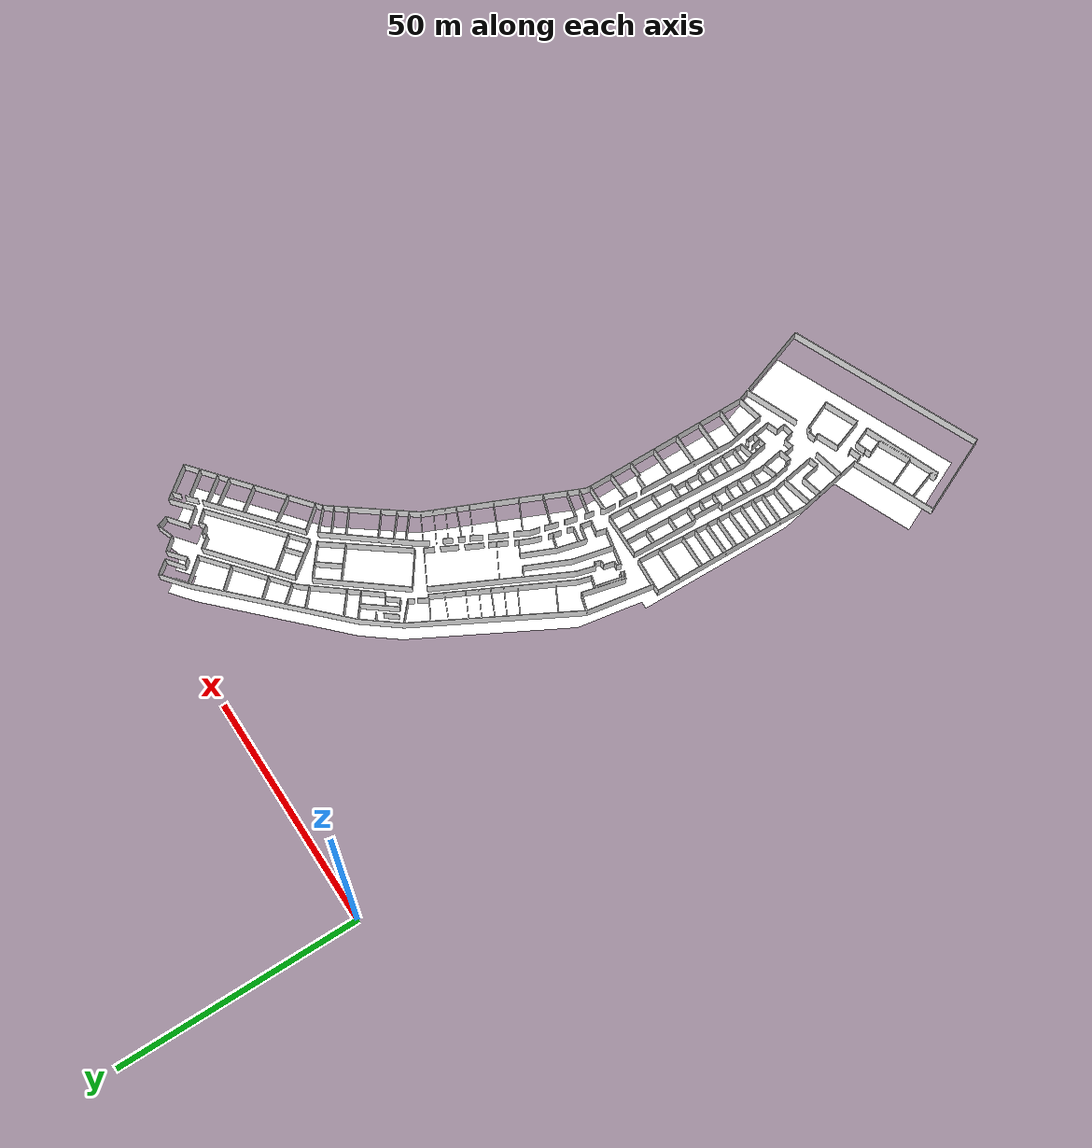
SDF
<sdf version="1.7">
  <world name="sim_world">
    <physics name="10ms" type="ode">
      <max_step_size>0.01</max_step_size>
      <real_time_factor>1.0</real_time_factor>
    </physics>
    <!-- added to fix multiple scan -->
    <plugin filename="libignition-gazebo-sensors-system.so" name="ignition::gazebo::systems::Sensors">
        <render_engine>ogre2</render_engine>
    </plugin>
    <plugin filename="libgz-sim-physics-system.so" name="gz::sim::systems::Physics">
    </plugin>
    <plugin filename="libgz-sim-user-commands-system.so" name="gz::sim::systems::UserCommands">
    </plugin>
    <plugin filename="libgz-sim-scene-broadcaster-system.so" name="gz::sim::systems::SceneBroadcaster">
    </plugin>
    <plugin filename="libdoor.so" name="door">
    </plugin>
    <plugin filename="liblift.so" name="lift">
    </plugin>
    <scene>
      <ambient>1 1 1</ambient>
      <background>0.8 0.8 0.8</background>
      <grid>false</grid>
    </scene>
    <gui fullscreen="0">
      <window>
        <width>1000</width>
        <height>845</height>
        <style material_theme="Light" material_primary="DeepOrange" material_accent="LightBlue" toolbar_color_light="#f3f3f3" toolbar_text_color_light="#111111" toolbar_color_dark="#414141" toolbar_text_color_dark="#f3f3f3" plugin_toolbar_color_light="#bbdefb" plugin_toolbar_text_color_light="#111111" plugin_toolbar_color_dark="#607d8b" plugin_toolbar_text_color_dark="#eeeeee" />
        <menus>
          <drawer default="false">
          </drawer>
        </menus>
      </window>
      <plugin filename="MinimalScene" name="3D View">
        <gz-gui>
          <title>3D View</title>
          <property type="bool" key="showTitleBar">false</property>
          <property type="string" key="state">docked</property>
        </gz-gui>
        <engine>ogre2</engine>
        <scene>scene</scene>
        <ambient_light>0.4 0.4 0.4</ambient_light>
        <background_color>0.8 0.8 0.8</background_color>
        <camera_pose>73.71459581128748 -125.86166280361773 10 0 0.6 1.57</camera_pose>
      </plugin>
      <plugin filename="EntityContextMenuPlugin" name="Entity context menu">
        <gz-gui>
          <property key="state" type="string">floating</property>
          <property key="width" type="double">5</property>
          <property key="height" type="double">5</property>
          <property key="showTitleBar" type="bool">false</property>
        </gz-gui>
      </plugin>
      <plugin filename="GzSceneManager" name="Scene Manager">
        <gz-gui>
          <property key="resizable" type="bool">false</property>
          <property key="width" type="double">5</property>
          <property key="height" type="double">5</property>
          <property key="state" type="string">floating</property>
          <property key="showTitleBar" type="bool">false</property>
        </gz-gui>
      </plugin>
      <plugin filename="InteractiveViewControl" name="Interactive view control">
        <gz-gui>
          <property key="resizable" type="bool">false</property>
          <property key="width" type="double">5</property>
          <property key="height" type="double">5</property>
          <property key="state" type="string">floating</property>
          <property key="showTitleBar" type="bool">false</property>
        </gz-gui>
      </plugin>
      <plugin filename="CameraTracking" name="Camera Tracking">
        <gz-gui>
          <property key="resizable" type="bool">false</property>
          <property key="width" type="double">5</property>
          <property key="height" type="double">5</property>
          <property key="state" type="string">floating</property>
          <property key="showTitleBar" type="bool">false</property>
        </gz-gui>
      </plugin>
      <plugin filename="MarkerManager" name="Marker manager">
        <gz-gui>
          <property key="resizable" type="bool">false</property>
          <property key="width" type="double">5</property>
          <property key="height" type="double">5</property>
          <property key="state" type="string">floating</property>
          <property key="showTitleBar" type="bool">false</property>
        </gz-gui>
      </plugin>
      <plugin filename="SelectEntities" name="Select Entities">
        <gz-gui>
          <property key="resizable" type="bool">false</property>
          <property key="width" type="double">5</property>
          <property key="height" type="double">5</property>
          <property key="state" type="string">floating</property>
          <property key="showTitleBar" type="bool">false</property>
        </gz-gui>
      </plugin>
      <plugin filename="Spawn" name="Spawn Entities">
        <gz-gui>
          <property key="resizable" type="bool">false</property>
          <property key="width" type="double">5</property>
          <property key="height" type="double">5</property>
          <property key="state" type="string">floating</property>
          <property key="showTitleBar" type="bool">false</property>
        </gz-gui>
      </plugin>
      <plugin filename="VisualizationCapabilities" name="Visualization Capabilities">
        <gz-gui>
          <property key="resizable" type="bool">false</property>
          <property key="width" type="double">5</property>
          <property key="height" type="double">5</property>
          <property key="state" type="string">floating</property>
          <property key="showTitleBar" type="bool">false</property>
        </gz-gui>
      </plugin>
      <plugin filename="WorldControl" name="World control">
        <gz-gui>
          <title>World control</title>
          <property type="bool" key="showTitleBar">false</property>
          <property type="bool" key="resizable">false</property>
          <property type="double" key="height">72</property>
          <property type="double" key="z">1</property>
          <property type="string" key="state">floating</property>
          <anchors target="3D View">
            <line own="left" target="left" />
            <line own="bottom" target="bottom" />
          </anchors>
        </gz-gui>
        <play_pause>true</play_pause>
        <step>true</step>
        <start_paused>true</start_paused>
        <use_event>true</use_event>
      </plugin>
      <plugin filename="WorldStats" name="World stats">
        <gz-gui>
          <title>World stats</title>
          <property type="bool" key="showTitleBar">false</property>
          <property type="bool" key="resizable">false</property>
          <property type="double" key="height">110</property>
          <property type="double" key="width">290</property>
          <property type="double" key="z">1</property>
          <property type="string" key="state">floating</property>
          <anchors target="3D View">
            <line own="right" target="right" />
            <line own="bottom" target="bottom" />
          </anchors>
        </gz-gui>
        <sim_time>true</sim_time>
        <real_time>true</real_time>
        <real_time_factor>true</real_time_factor>
        <iterations>true</iterations>
      </plugin>
      <plugin filename="Shapes" name="Shapes">
        <gz-gui>
          <property key="resizable" type="bool">false</property>
          <property key="x" type="double">0</property>
          <property key="y" type="double">0</property>
          <property key="width" type="double">250</property>
          <property key="height" type="double">50</property>
          <property key="state" type="string">floating</property>
          <property key="showTitleBar" type="bool">false</property>
          <property key="cardBackground" type="string">#666666</property>
        </gz-gui>
      </plugin>
      <plugin filename="Lights" name="Lights">
        <gz-gui>
          <property key="resizable" type="bool">false</property>
          <property key="x" type="double">250</property>
          <property key="y" type="double">0</property>
          <property key="width" type="double">150</property>
          <property key="height" type="double">50</property>
          <property key="state" type="string">floating</property>
          <property key="showTitleBar" type="bool">false</property>
          <property key="cardBackground" type="string">#666666</property>
        </gz-gui>
      </plugin>
      <plugin filename="TransformControl" name="Transform control">
        <gz-gui>
          <property key="resizable" type="bool">false</property>
          <property key="x" type="double">0</property>
          <property key="y" type="double">50</property>
          <property key="width" type="double">250</property>
          <property key="height" type="double">50</property>
          <property key="state" type="string">floating</property>
          <property key="showTitleBar" type="bool">false</property>
          <property key="cardBackground" type="string">#777777</property>
        </gz-gui>
      </plugin>
      <plugin filename="Screenshot" name="Screenshot">
        <gz-gui>
          <property key="resizable" type="bool">false</property>
          <property key="x" type="double">250</property>
          <property key="y" type="double">50</property>
          <property key="width" type="double">50</property>
          <property key="height" type="double">50</property>
          <property key="state" type="string">floating</property>
          <property key="showTitleBar" type="bool">false</property>
          <property key="cardBackground" type="string">#777777</property>
        </gz-gui>
      </plugin>
      <plugin filename="CopyPaste" name="CopyPaste">
        <gz-gui>
          <property key="resizable" type="bool">false</property>
          <property key="x" type="double">300</property>
          <property key="y" type="double">50</property>
          <property key="width" type="double">100</property>
          <property key="height" type="double">50</property>
          <property key="state" type="string">floating</property>
          <property key="showTitleBar" type="bool">false</property>
          <property key="cardBackground" type="string">#777777</property>
        </gz-gui>
      </plugin>
      <plugin filename="ComponentInspector" name="Component inspector">
        <gz-gui>
          <property type="bool" key="showTitleBar">false</property>
          <property type="string" key="state">docked</property>
        </gz-gui>
      </plugin>
      <plugin filename="EntityTree" name="Entity tree">
        <gz-gui>
          <property type="bool" key="showTitleBar">false</property>
          <property type="string" key="state">docked</property>
        </gz-gui>
      </plugin>
      <plugin filename="toggle_charging" name="toggle_charging" />
      <plugin name="toggle_floors" filename="toggle_floors">
        <floor name="PT" model_name="RMF-elettra-map_PT" />
      </plugin>
    </gui>
    <light type="directional" name="sun">
      <cast_shadows>true</cast_shadows>
      <pose>0 0 10 0 0 0</pose>
      <diffuse>1 1 1 1</diffuse>
      <specular>0.2 0.2 0.2 1</specular>
      <attenuation>
        <range>1000</range>
        <constant>0.09</constant>
        <linear>0.001</linear>
        <quadratic>0.001</quadratic>
      </attenuation>
      <direction>-0.5 0.1 -0.9</direction>
    </light>
    <include>
      <name>RMF-elettra-map_PT</name>
      <uri>model://RMF-elettra-map_PT</uri>
      <pose>0 0 0.0 0 0 0</pose>
    </include>
    <rmf_charger_waypoints name="charger_waypoints">
      <rmf_vertex name="T2PT071_charge" x="72.96330894270618" y="-84.38055616494573" level="PT" />
      <rmf_vertex name="dispensa_charge" x="58.95785433301189" y="-100.016660899958" level="PT" />
    </rmf_charger_waypoints>
  </world>
</sdf>

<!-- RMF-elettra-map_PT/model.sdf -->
<sdf version="1.7">
  <model name="RMF-elettra-map_PT">
    <static>true</static>
    <link name="floor_1">
      <visual name="visual">
        <geometry>
          <mesh>
            <uri>model://RMF-elettra-map_PT/meshes/floor_1.obj</uri>
          </mesh>
        </geometry>
        <material>
          <diffuse>1.0 1.0 1.0</diffuse>
          <specular>0.1 0.1 0.1</specular>
          <pbr>
            <metal>
              <metalness>0.0</metalness>
              <albedo_map>model://RMF-elettra-map_PT/meshes/blue_linoleum.png</albedo_map>
            </metal>
          </pbr>
          <script>
            <uri>model://RMF-elettra-map_PT/meshes/</uri>
            <name>floor_1_Diffuse</name>
          </script>
        </material>
      </visual>
      <collision name="collision">
        <geometry>
          <mesh>
            <uri>model://RMF-elettra-map_PT/meshes/floor_1.obj</uri>
          </mesh>
        </geometry>
        <surface>
          <contact>
            <collide_bitmask>0x01</collide_bitmask>
          </contact>
        </surface>
      </collision>
    </link>
    <link name="wall_1">
      <visual name="wall_1">
        <geometry>
          <mesh>
            <uri>model://RMF-elettra-map_PT/meshes/wall_1.obj</uri>
          </mesh>
        </geometry>
        <transparency>0.0</transparency>
        <material>
          <diffuse>1.0 1.0 1.0</diffuse>
          <specular>0.1 0.1 0.1</specular>
          <pbr>
            <metal>
              <metalness>0.0</metalness>
              <albedo_map>model://RMF-elettra-map_PT/meshes/default.png</albedo_map>
            </metal>
          </pbr>
          <script>
            <uri>model://RMF-elettra-map_PT/meshes/</uri>
            <name>wall_1_Diffuse</name>
          </script>
        </material>
      </visual>
      <collision name="collision">
        <geometry>
          <mesh>
            <uri>model://RMF-elettra-map_PT/meshes/wall_1.obj</uri>
          </mesh>
        </geometry>
        <surface>
          <contact>
            <collide_bitmask>0x01</collide_bitmask>
          </contact>
        </surface>
      </collision>
      <pose>9.16939675129102 -155.3336477546705 0 0 0 0</pose>
    </link>
  </model>
</sdf>
